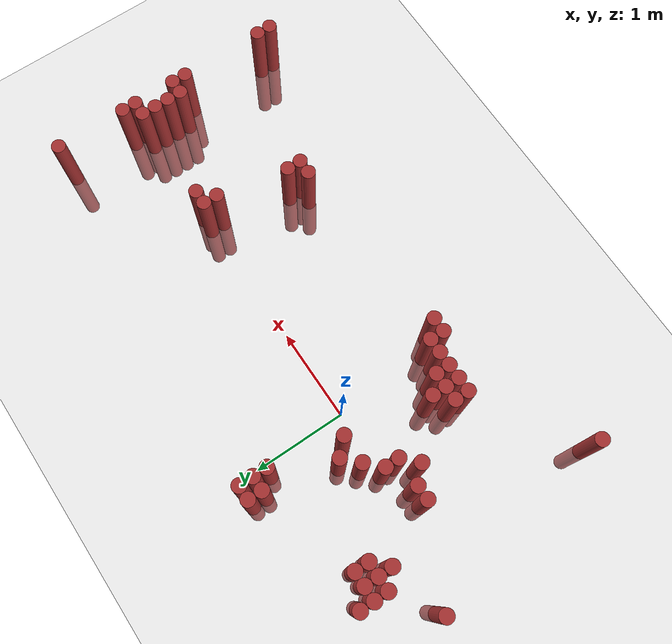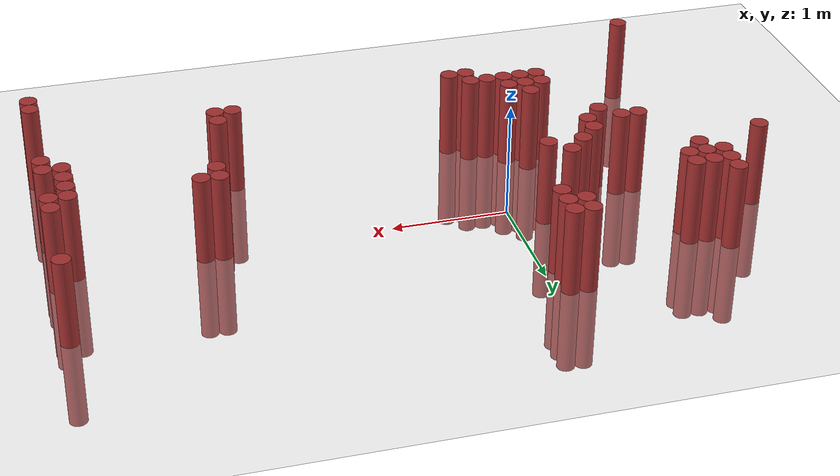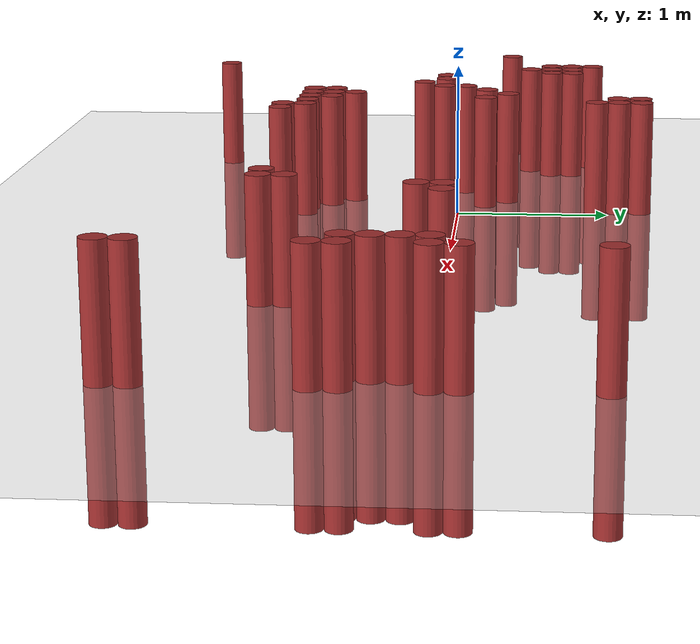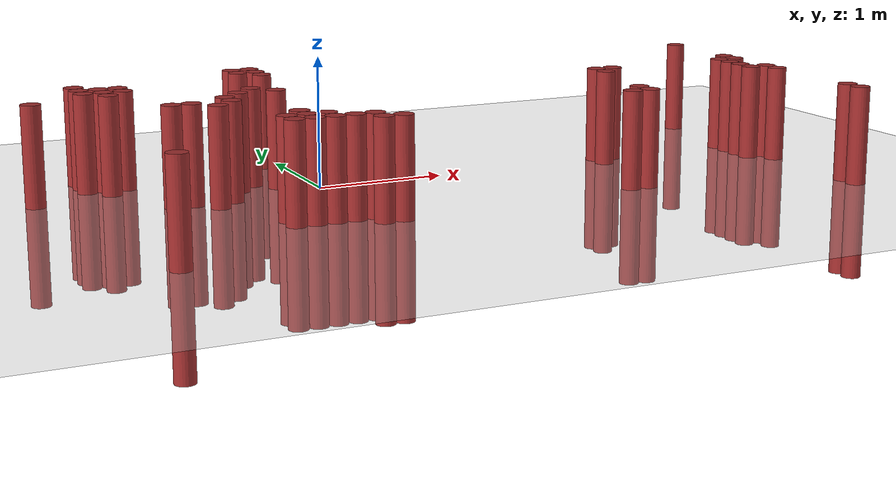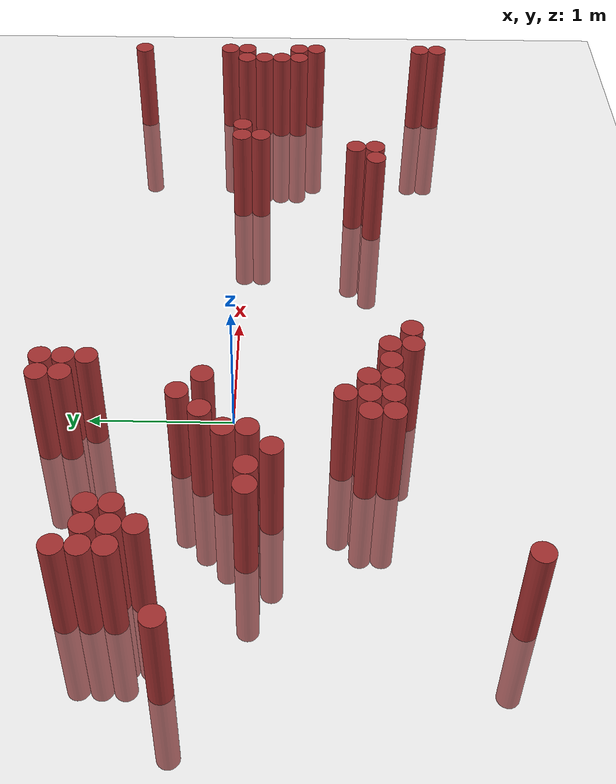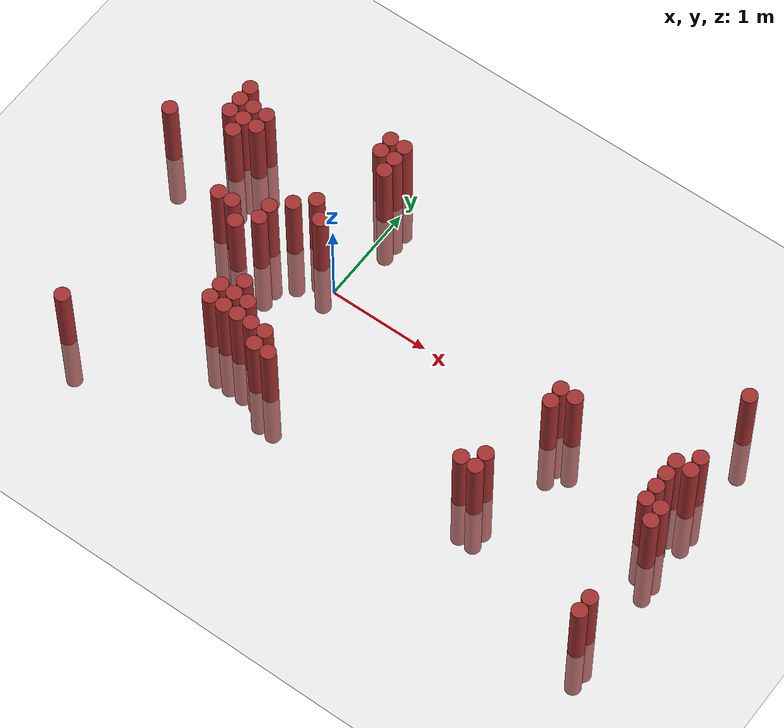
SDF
<sdf version="1.6">
 <world name="default">
  <model name="ground_plane">
   <static>1</static>
   <link name="link">
    <collision name="collision">
     <geometry><plane><normal>0 0 1</normal><size>100 100</size></plane></geometry>
     <surface><friction><ode><mu>100</mu><mu2>50</mu2></ode></friction></surface>
    </collision>
    <visual name="visual">
     <cast_shadows>0</cast_shadows>
     <geometry><plane><normal>0 0 1</normal><size>100 100</size></plane></geometry>
     <material>
      <script><uri>file://media/materials/scripts/gazebo.material</uri><name>Gazebo/Grey</name></script>
     </material>
    </visual>
   </link>
  </model>
  <model name="unit_cylinder_348">
   <static>1</static>
   <pose>-2.075000 0.325000 0.000000 0.000000 0.000000 0.000000</pose>
   <link name="link">
    <inertial>
     <mass>1</mass>
     <inertia><ixx>0.145833</ixx><ixy>0</ixy><ixz>0</ixz><iyy>0.145833</iyy><iyz>0</iyz><izz>0.125</izz></inertia>
    </inertial>
    <collision name="collision">
     <geometry><cylinder><radius>0.075000</radius><length>1.5</length></cylinder></geometry>
    </collision>
    <visual name="visual">
     <geometry><cylinder><radius>0.075000</radius><length>1.5</length></cylinder></geometry>
     <material>
      <ambient>0.648000 0.192000 0.192000 1</ambient>
      <diffuse>0.648000 0.192000 0.192000 1</diffuse>
     </material>
     <material>
      <script><name>Gazebo/Grey</name><uri>file://media/materials/scripts/gazebo.material</uri></script>
     </material>
    </visual>
   </link>
  </model>
  <model name="unit_cylinder_351">
   <static>1</static>
   <pose>-1.625000 -1.775000 0.000000 0.000000 0.000000 0.000000</pose>
   <link name="link">
    <inertial>
     <mass>1</mass>
     <inertia><ixx>0.145833</ixx><ixy>0</ixy><ixz>0</ixz><iyy>0.145833</iyy><iyz>0</iyz><izz>0.125</izz></inertia>
    </inertial>
    <collision name="collision">
     <geometry><cylinder><radius>0.075000</radius><length>1.5</length></cylinder></geometry>
    </collision>
    <visual name="visual">
     <geometry><cylinder><radius>0.075000</radius><length>1.5</length></cylinder></geometry>
     <material>
      <ambient>0.648000 0.192000 0.192000 1</ambient>
      <diffuse>0.648000 0.192000 0.192000 1</diffuse>
     </material>
     <material>
      <script><name>Gazebo/Grey</name><uri>file://media/materials/scripts/gazebo.material</uri></script>
     </material>
    </visual>
   </link>
  </model>
  <model name="unit_cylinder_352">
   <static>1</static>
   <pose>-1.625000 0.625000 0.000000 0.000000 0.000000 0.000000</pose>
   <link name="link">
    <inertial>
     <mass>1</mass>
     <inertia><ixx>0.145833</ixx><ixy>0</ixy><ixz>0</ixz><iyy>0.145833</iyy><iyz>0</iyz><izz>0.125</izz></inertia>
    </inertial>
    <collision name="collision">
     <geometry><cylinder><radius>0.075000</radius><length>1.5</length></cylinder></geometry>
    </collision>
    <visual name="visual">
     <geometry><cylinder><radius>0.075000</radius><length>1.5</length></cylinder></geometry>
     <material>
      <ambient>0.648000 0.192000 0.192000 1</ambient>
      <diffuse>0.648000 0.192000 0.192000 1</diffuse>
     </material>
     <material>
      <script><name>Gazebo/Grey</name><uri>file://media/materials/scripts/gazebo.material</uri></script>
     </material>
    </visual>
   </link>
  </model>
  <model name="unit_cylinder_353">
   <static>1</static>
   <pose>-1.625000 0.775000 0.000000 0.000000 0.000000 0.000000</pose>
   <link name="link">
    <inertial>
     <mass>1</mass>
     <inertia><ixx>0.145833</ixx><ixy>0</ixy><ixz>0</ixz><iyy>0.145833</iyy><iyz>0</iyz><izz>0.125</izz></inertia>
    </inertial>
    <collision name="collision">
     <geometry><cylinder><radius>0.075000</radius><length>1.5</length></cylinder></geometry>
    </collision>
    <visual name="visual">
     <geometry><cylinder><radius>0.075000</radius><length>1.5</length></cylinder></geometry>
     <material>
      <ambient>0.648000 0.192000 0.192000 1</ambient>
      <diffuse>0.648000 0.192000 0.192000 1</diffuse>
     </material>
     <material>
      <script><name>Gazebo/Grey</name><uri>file://media/materials/scripts/gazebo.material</uri></script>
     </material>
    </visual>
   </link>
  </model>
  <model name="unit_cylinder_354">
   <static>1</static>
   <pose>-1.625000 0.925000 0.000000 0.000000 0.000000 0.000000</pose>
   <link name="link">
    <inertial>
     <mass>1</mass>
     <inertia><ixx>0.145833</ixx><ixy>0</ixy><ixz>0</ixz><iyy>0.145833</iyy><iyz>0</iyz><izz>0.125</izz></inertia>
    </inertial>
    <collision name="collision">
     <geometry><cylinder><radius>0.075000</radius><length>1.5</length></cylinder></geometry>
    </collision>
    <visual name="visual">
     <geometry><cylinder><radius>0.075000</radius><length>1.5</length></cylinder></geometry>
     <material>
      <ambient>0.648000 0.192000 0.192000 1</ambient>
      <diffuse>0.648000 0.192000 0.192000 1</diffuse>
     </material>
     <material>
      <script><name>Gazebo/Grey</name><uri>file://media/materials/scripts/gazebo.material</uri></script>
     </material>
    </visual>
   </link>
  </model>
  <model name="unit_cylinder_355">
   <static>1</static>
   <pose>-1.475000 0.475000 0.000000 0.000000 0.000000 0.000000</pose>
   <link name="link">
    <inertial>
     <mass>1</mass>
     <inertia><ixx>0.145833</ixx><ixy>0</ixy><ixz>0</ixz><iyy>0.145833</iyy><iyz>0</iyz><izz>0.125</izz></inertia>
    </inertial>
    <collision name="collision">
     <geometry><cylinder><radius>0.075000</radius><length>1.5</length></cylinder></geometry>
    </collision>
    <visual name="visual">
     <geometry><cylinder><radius>0.075000</radius><length>1.5</length></cylinder></geometry>
     <material>
      <ambient>0.648000 0.192000 0.192000 1</ambient>
      <diffuse>0.648000 0.192000 0.192000 1</diffuse>
     </material>
     <material>
      <script><name>Gazebo/Grey</name><uri>file://media/materials/scripts/gazebo.material</uri></script>
     </material>
    </visual>
   </link>
  </model>
  <model name="unit_cylinder_356">
   <static>1</static>
   <pose>-1.475000 0.625000 0.000000 0.000000 0.000000 0.000000</pose>
   <link name="link">
    <inertial>
     <mass>1</mass>
     <inertia><ixx>0.145833</ixx><ixy>0</ixy><ixz>0</ixz><iyy>0.145833</iyy><iyz>0</iyz><izz>0.125</izz></inertia>
    </inertial>
    <collision name="collision">
     <geometry><cylinder><radius>0.075000</radius><length>1.5</length></cylinder></geometry>
    </collision>
    <visual name="visual">
     <geometry><cylinder><radius>0.075000</radius><length>1.5</length></cylinder></geometry>
     <material>
      <ambient>0.648000 0.192000 0.192000 1</ambient>
      <diffuse>0.648000 0.192000 0.192000 1</diffuse>
     </material>
     <material>
      <script><name>Gazebo/Grey</name><uri>file://media/materials/scripts/gazebo.material</uri></script>
     </material>
    </visual>
   </link>
  </model>
  <model name="unit_cylinder_357">
   <static>1</static>
   <pose>-1.475000 0.775000 0.000000 0.000000 0.000000 0.000000</pose>
   <link name="link">
    <inertial>
     <mass>1</mass>
     <inertia><ixx>0.145833</ixx><ixy>0</ixy><ixz>0</ixz><iyy>0.145833</iyy><iyz>0</iyz><izz>0.125</izz></inertia>
    </inertial>
    <collision name="collision">
     <geometry><cylinder><radius>0.075000</radius><length>1.5</length></cylinder></geometry>
    </collision>
    <visual name="visual">
     <geometry><cylinder><radius>0.075000</radius><length>1.5</length></cylinder></geometry>
     <material>
      <ambient>0.648000 0.192000 0.192000 1</ambient>
      <diffuse>0.648000 0.192000 0.192000 1</diffuse>
     </material>
     <material>
      <script><name>Gazebo/Grey</name><uri>file://media/materials/scripts/gazebo.material</uri></script>
     </material>
    </visual>
   </link>
  </model>
  <model name="unit_cylinder_358">
   <static>1</static>
   <pose>-1.325000 0.625000 0.000000 0.000000 0.000000 0.000000</pose>
   <link name="link">
    <inertial>
     <mass>1</mass>
     <inertia><ixx>0.145833</ixx><ixy>0</ixy><ixz>0</ixz><iyy>0.145833</iyy><iyz>0</iyz><izz>0.125</izz></inertia>
    </inertial>
    <collision name="collision">
     <geometry><cylinder><radius>0.075000</radius><length>1.5</length></cylinder></geometry>
    </collision>
    <visual name="visual">
     <geometry><cylinder><radius>0.075000</radius><length>1.5</length></cylinder></geometry>
     <material>
      <ambient>0.648000 0.192000 0.192000 1</ambient>
      <diffuse>0.648000 0.192000 0.192000 1</diffuse>
     </material>
     <material>
      <script><name>Gazebo/Grey</name><uri>file://media/materials/scripts/gazebo.material</uri></script>
     </material>
    </visual>
   </link>
  </model>
  <model name="unit_cylinder_359">
   <static>1</static>
   <pose>-1.325000 0.775000 0.000000 0.000000 0.000000 0.000000</pose>
   <link name="link">
    <inertial>
     <mass>1</mass>
     <inertia><ixx>0.145833</ixx><ixy>0</ixy><ixz>0</ixz><iyy>0.145833</iyy><iyz>0</iyz><izz>0.125</izz></inertia>
    </inertial>
    <collision name="collision">
     <geometry><cylinder><radius>0.075000</radius><length>1.5</length></cylinder></geometry>
    </collision>
    <visual name="visual">
     <geometry><cylinder><radius>0.075000</radius><length>1.5</length></cylinder></geometry>
     <material>
      <ambient>0.648000 0.192000 0.192000 1</ambient>
      <diffuse>0.648000 0.192000 0.192000 1</diffuse>
     </material>
     <material>
      <script><name>Gazebo/Grey</name><uri>file://media/materials/scripts/gazebo.material</uri></script>
     </material>
    </visual>
   </link>
  </model>
  <model name="unit_cylinder_362">
   <static>1</static>
   <pose>-1.175000 -0.125000 0.000000 0.000000 0.000000 0.000000</pose>
   <link name="link">
    <inertial>
     <mass>1</mass>
     <inertia><ixx>0.145833</ixx><ixy>0</ixy><ixz>0</ixz><iyy>0.145833</iyy><iyz>0</iyz><izz>0.125</izz></inertia>
    </inertial>
    <collision name="collision">
     <geometry><cylinder><radius>0.075000</radius><length>1.5</length></cylinder></geometry>
    </collision>
    <visual name="visual">
     <geometry><cylinder><radius>0.075000</radius><length>1.5</length></cylinder></geometry>
     <material>
      <ambient>0.648000 0.192000 0.192000 1</ambient>
      <diffuse>0.648000 0.192000 0.192000 1</diffuse>
     </material>
     <material>
      <script><name>Gazebo/Grey</name><uri>file://media/materials/scripts/gazebo.material</uri></script>
     </material>
    </visual>
   </link>
  </model>
  <model name="unit_cylinder_366">
   <static>1</static>
   <pose>-1.025000 -0.125000 0.000000 0.000000 0.000000 0.000000</pose>
   <link name="link">
    <inertial>
     <mass>1</mass>
     <inertia><ixx>0.145833</ixx><ixy>0</ixy><ixz>0</ixz><iyy>0.145833</iyy><iyz>0</iyz><izz>0.125</izz></inertia>
    </inertial>
    <collision name="collision">
     <geometry><cylinder><radius>0.075000</radius><length>1.5</length></cylinder></geometry>
    </collision>
    <visual name="visual">
     <geometry><cylinder><radius>0.075000</radius><length>1.5</length></cylinder></geometry>
     <material>
      <ambient>0.648000 0.192000 0.192000 1</ambient>
      <diffuse>0.648000 0.192000 0.192000 1</diffuse>
     </material>
     <material>
      <script><name>Gazebo/Grey</name><uri>file://media/materials/scripts/gazebo.material</uri></script>
     </material>
    </visual>
   </link>
  </model>
  <model name="unit_cylinder_369">
   <static>1</static>
   <pose>-0.875000 -0.275000 0.000000 0.000000 0.000000 0.000000</pose>
   <link name="link">
    <inertial>
     <mass>1</mass>
     <inertia><ixx>0.145833</ixx><ixy>0</ixy><ixz>0</ixz><iyy>0.145833</iyy><iyz>0</iyz><izz>0.125</izz></inertia>
    </inertial>
    <collision name="collision">
     <geometry><cylinder><radius>0.075000</radius><length>1.5</length></cylinder></geometry>
    </collision>
    <visual name="visual">
     <geometry><cylinder><radius>0.075000</radius><length>1.5</length></cylinder></geometry>
     <material>
      <ambient>0.648000 0.192000 0.192000 1</ambient>
      <diffuse>0.648000 0.192000 0.192000 1</diffuse>
     </material>
     <material>
      <script><name>Gazebo/Grey</name><uri>file://media/materials/scripts/gazebo.material</uri></script>
     </material>
    </visual>
   </link>
  </model>
  <model name="unit_cylinder_372">
   <static>1</static>
   <pose>-0.725000 -0.125000 0.000000 0.000000 0.000000 0.000000</pose>
   <link name="link">
    <inertial>
     <mass>1</mass>
     <inertia><ixx>0.145833</ixx><ixy>0</ixy><ixz>0</ixz><iyy>0.145833</iyy><iyz>0</iyz><izz>0.125</izz></inertia>
    </inertial>
    <collision name="collision">
     <geometry><cylinder><radius>0.075000</radius><length>1.5</length></cylinder></geometry>
    </collision>
    <visual name="visual">
     <geometry><cylinder><radius>0.075000</radius><length>1.5</length></cylinder></geometry>
     <material>
      <ambient>0.648000 0.192000 0.192000 1</ambient>
      <diffuse>0.648000 0.192000 0.192000 1</diffuse>
     </material>
     <material>
      <script><name>Gazebo/Grey</name><uri>file://media/materials/scripts/gazebo.material</uri></script>
     </material>
    </visual>
   </link>
  </model>
  <model name="unit_cylinder_373">
   <static>1</static>
   <pose>-0.725000 0.025000 0.000000 0.000000 0.000000 0.000000</pose>
   <link name="link">
    <inertial>
     <mass>1</mass>
     <inertia><ixx>0.145833</ixx><ixy>0</ixy><ixz>0</ixz><iyy>0.145833</iyy><iyz>0</iyz><izz>0.125</izz></inertia>
    </inertial>
    <collision name="collision">
     <geometry><cylinder><radius>0.075000</radius><length>1.5</length></cylinder></geometry>
    </collision>
    <visual name="visual">
     <geometry><cylinder><radius>0.075000</radius><length>1.5</length></cylinder></geometry>
     <material>
      <ambient>0.648000 0.192000 0.192000 1</ambient>
      <diffuse>0.648000 0.192000 0.192000 1</diffuse>
     </material>
     <material>
      <script><name>Gazebo/Grey</name><uri>file://media/materials/scripts/gazebo.material</uri></script>
     </material>
    </visual>
   </link>
  </model>
  <model name="unit_cylinder_376">
   <static>1</static>
   <pose>-0.575000 -1.025000 0.000000 0.000000 0.000000 0.000000</pose>
   <link name="link">
    <inertial>
     <mass>1</mass>
     <inertia><ixx>0.145833</ixx><ixy>0</ixy><ixz>0</ixz><iyy>0.145833</iyy><iyz>0</iyz><izz>0.125</izz></inertia>
    </inertial>
    <collision name="collision">
     <geometry><cylinder><radius>0.075000</radius><length>1.5</length></cylinder></geometry>
    </collision>
    <visual name="visual">
     <geometry><cylinder><radius>0.075000</radius><length>1.5</length></cylinder></geometry>
     <material>
      <ambient>0.648000 0.192000 0.192000 1</ambient>
      <diffuse>0.648000 0.192000 0.192000 1</diffuse>
     </material>
     <material>
      <script><name>Gazebo/Grey</name><uri>file://media/materials/scripts/gazebo.material</uri></script>
     </material>
    </visual>
   </link>
  </model>
  <model name="unit_cylinder_377">
   <static>1</static>
   <pose>-0.575000 -0.875000 0.000000 0.000000 0.000000 0.000000</pose>
   <link name="link">
    <inertial>
     <mass>1</mass>
     <inertia><ixx>0.145833</ixx><ixy>0</ixy><ixz>0</ixz><iyy>0.145833</iyy><iyz>0</iyz><izz>0.125</izz></inertia>
    </inertial>
    <collision name="collision">
     <geometry><cylinder><radius>0.075000</radius><length>1.5</length></cylinder></geometry>
    </collision>
    <visual name="visual">
     <geometry><cylinder><radius>0.075000</radius><length>1.5</length></cylinder></geometry>
     <material>
      <ambient>0.648000 0.192000 0.192000 1</ambient>
      <diffuse>0.648000 0.192000 0.192000 1</diffuse>
     </material>
     <material>
      <script><name>Gazebo/Grey</name><uri>file://media/materials/scripts/gazebo.material</uri></script>
     </material>
    </visual>
   </link>
  </model>
  <model name="unit_cylinder_378">
   <static>1</static>
   <pose>-0.575000 0.175000 0.000000 0.000000 0.000000 0.000000</pose>
   <link name="link">
    <inertial>
     <mass>1</mass>
     <inertia><ixx>0.145833</ixx><ixy>0</ixy><ixz>0</ixz><iyy>0.145833</iyy><iyz>0</iyz><izz>0.125</izz></inertia>
    </inertial>
    <collision name="collision">
     <geometry><cylinder><radius>0.075000</radius><length>1.5</length></cylinder></geometry>
    </collision>
    <visual name="visual">
     <geometry><cylinder><radius>0.075000</radius><length>1.5</length></cylinder></geometry>
     <material>
      <ambient>0.648000 0.192000 0.192000 1</ambient>
      <diffuse>0.648000 0.192000 0.192000 1</diffuse>
     </material>
     <material>
      <script><name>Gazebo/Grey</name><uri>file://media/materials/scripts/gazebo.material</uri></script>
     </material>
    </visual>
   </link>
  </model>
  <model name="unit_cylinder_380">
   <static>1</static>
   <pose>-0.425000 -1.025000 0.000000 0.000000 0.000000 0.000000</pose>
   <link name="link">
    <inertial>
     <mass>1</mass>
     <inertia><ixx>0.145833</ixx><ixy>0</ixy><ixz>0</ixz><iyy>0.145833</iyy><iyz>0</iyz><izz>0.125</izz></inertia>
    </inertial>
    <collision name="collision">
     <geometry><cylinder><radius>0.075000</radius><length>1.5</length></cylinder></geometry>
    </collision>
    <visual name="visual">
     <geometry><cylinder><radius>0.075000</radius><length>1.5</length></cylinder></geometry>
     <material>
      <ambient>0.648000 0.192000 0.192000 1</ambient>
      <diffuse>0.648000 0.192000 0.192000 1</diffuse>
     </material>
     <material>
      <script><name>Gazebo/Grey</name><uri>file://media/materials/scripts/gazebo.material</uri></script>
     </material>
    </visual>
   </link>
  </model>
  <model name="unit_cylinder_381">
   <static>1</static>
   <pose>-0.425000 -0.875000 0.000000 0.000000 0.000000 0.000000</pose>
   <link name="link">
    <inertial>
     <mass>1</mass>
     <inertia><ixx>0.145833</ixx><ixy>0</ixy><ixz>0</ixz><iyy>0.145833</iyy><iyz>0</iyz><izz>0.125</izz></inertia>
    </inertial>
    <collision name="collision">
     <geometry><cylinder><radius>0.075000</radius><length>1.5</length></cylinder></geometry>
    </collision>
    <visual name="visual">
     <geometry><cylinder><radius>0.075000</radius><length>1.5</length></cylinder></geometry>
     <material>
      <ambient>0.648000 0.192000 0.192000 1</ambient>
      <diffuse>0.648000 0.192000 0.192000 1</diffuse>
     </material>
     <material>
      <script><name>Gazebo/Grey</name><uri>file://media/materials/scripts/gazebo.material</uri></script>
     </material>
    </visual>
   </link>
  </model>
  <model name="unit_cylinder_382">
   <static>1</static>
   <pose>-0.425000 -0.725000 0.000000 0.000000 0.000000 0.000000</pose>
   <link name="link">
    <inertial>
     <mass>1</mass>
     <inertia><ixx>0.145833</ixx><ixy>0</ixy><ixz>0</ixz><iyy>0.145833</iyy><iyz>0</iyz><izz>0.125</izz></inertia>
    </inertial>
    <collision name="collision">
     <geometry><cylinder><radius>0.075000</radius><length>1.5</length></cylinder></geometry>
    </collision>
    <visual name="visual">
     <geometry><cylinder><radius>0.075000</radius><length>1.5</length></cylinder></geometry>
     <material>
      <ambient>0.648000 0.192000 0.192000 1</ambient>
      <diffuse>0.648000 0.192000 0.192000 1</diffuse>
     </material>
     <material>
      <script><name>Gazebo/Grey</name><uri>file://media/materials/scripts/gazebo.material</uri></script>
     </material>
    </visual>
   </link>
  </model>
  <model name="unit_cylinder_383">
   <static>1</static>
   <pose>-0.425000 0.325000 0.000000 0.000000 0.000000 0.000000</pose>
   <link name="link">
    <inertial>
     <mass>1</mass>
     <inertia><ixx>0.145833</ixx><ixy>0</ixy><ixz>0</ixz><iyy>0.145833</iyy><iyz>0</iyz><izz>0.125</izz></inertia>
    </inertial>
    <collision name="collision">
     <geometry><cylinder><radius>0.075000</radius><length>1.5</length></cylinder></geometry>
    </collision>
    <visual name="visual">
     <geometry><cylinder><radius>0.075000</radius><length>1.5</length></cylinder></geometry>
     <material>
      <ambient>0.648000 0.192000 0.192000 1</ambient>
      <diffuse>0.648000 0.192000 0.192000 1</diffuse>
     </material>
     <material>
      <script><name>Gazebo/Grey</name><uri>file://media/materials/scripts/gazebo.material</uri></script>
     </material>
    </visual>
   </link>
  </model>
  <model name="unit_cylinder_384">
   <static>1</static>
   <pose>-0.275000 -1.025000 0.000000 0.000000 0.000000 0.000000</pose>
   <link name="link">
    <inertial>
     <mass>1</mass>
     <inertia><ixx>0.145833</ixx><ixy>0</ixy><ixz>0</ixz><iyy>0.145833</iyy><iyz>0</iyz><izz>0.125</izz></inertia>
    </inertial>
    <collision name="collision">
     <geometry><cylinder><radius>0.075000</radius><length>1.5</length></cylinder></geometry>
    </collision>
    <visual name="visual">
     <geometry><cylinder><radius>0.075000</radius><length>1.5</length></cylinder></geometry>
     <material>
      <ambient>0.648000 0.192000 0.192000 1</ambient>
      <diffuse>0.648000 0.192000 0.192000 1</diffuse>
     </material>
     <material>
      <script><name>Gazebo/Grey</name><uri>file://media/materials/scripts/gazebo.material</uri></script>
     </material>
    </visual>
   </link>
  </model>
  <model name="unit_cylinder_385">
   <static>1</static>
   <pose>-0.275000 -0.875000 0.000000 0.000000 0.000000 0.000000</pose>
   <link name="link">
    <inertial>
     <mass>1</mass>
     <inertia><ixx>0.145833</ixx><ixy>0</ixy><ixz>0</ixz><iyy>0.145833</iyy><iyz>0</iyz><izz>0.125</izz></inertia>
    </inertial>
    <collision name="collision">
     <geometry><cylinder><radius>0.075000</radius><length>1.5</length></cylinder></geometry>
    </collision>
    <visual name="visual">
     <geometry><cylinder><radius>0.075000</radius><length>1.5</length></cylinder></geometry>
     <material>
      <ambient>0.648000 0.192000 0.192000 1</ambient>
      <diffuse>0.648000 0.192000 0.192000 1</diffuse>
     </material>
     <material>
      <script><name>Gazebo/Grey</name><uri>file://media/materials/scripts/gazebo.material</uri></script>
     </material>
    </visual>
   </link>
  </model>
  <model name="unit_cylinder_386">
   <static>1</static>
   <pose>-0.275000 0.175000 0.000000 0.000000 0.000000 0.000000</pose>
   <link name="link">
    <inertial>
     <mass>1</mass>
     <inertia><ixx>0.145833</ixx><ixy>0</ixy><ixz>0</ixz><iyy>0.145833</iyy><iyz>0</iyz><izz>0.125</izz></inertia>
    </inertial>
    <collision name="collision">
     <geometry><cylinder><radius>0.075000</radius><length>1.5</length></cylinder></geometry>
    </collision>
    <visual name="visual">
     <geometry><cylinder><radius>0.075000</radius><length>1.5</length></cylinder></geometry>
     <material>
      <ambient>0.648000 0.192000 0.192000 1</ambient>
      <diffuse>0.648000 0.192000 0.192000 1</diffuse>
     </material>
     <material>
      <script><name>Gazebo/Grey</name><uri>file://media/materials/scripts/gazebo.material</uri></script>
     </material>
    </visual>
   </link>
  </model>
  <model name="unit_cylinder_387">
   <static>1</static>
   <pose>-0.275000 1.075000 0.000000 0.000000 0.000000 0.000000</pose>
   <link name="link">
    <inertial>
     <mass>1</mass>
     <inertia><ixx>0.145833</ixx><ixy>0</ixy><ixz>0</ixz><iyy>0.145833</iyy><iyz>0</iyz><izz>0.125</izz></inertia>
    </inertial>
    <collision name="collision">
     <geometry><cylinder><radius>0.075000</radius><length>1.5</length></cylinder></geometry>
    </collision>
    <visual name="visual">
     <geometry><cylinder><radius>0.075000</radius><length>1.5</length></cylinder></geometry>
     <material>
      <ambient>0.648000 0.192000 0.192000 1</ambient>
      <diffuse>0.648000 0.192000 0.192000 1</diffuse>
     </material>
     <material>
      <script><name>Gazebo/Grey</name><uri>file://media/materials/scripts/gazebo.material</uri></script>
     </material>
    </visual>
   </link>
  </model>
  <model name="unit_cylinder_388">
   <static>1</static>
   <pose>-0.275000 1.225000 0.000000 0.000000 0.000000 0.000000</pose>
   <link name="link">
    <inertial>
     <mass>1</mass>
     <inertia><ixx>0.145833</ixx><ixy>0</ixy><ixz>0</ixz><iyy>0.145833</iyy><iyz>0</iyz><izz>0.125</izz></inertia>
    </inertial>
    <collision name="collision">
     <geometry><cylinder><radius>0.075000</radius><length>1.5</length></cylinder></geometry>
    </collision>
    <visual name="visual">
     <geometry><cylinder><radius>0.075000</radius><length>1.5</length></cylinder></geometry>
     <material>
      <ambient>0.648000 0.192000 0.192000 1</ambient>
      <diffuse>0.648000 0.192000 0.192000 1</diffuse>
     </material>
     <material>
      <script><name>Gazebo/Grey</name><uri>file://media/materials/scripts/gazebo.material</uri></script>
     </material>
    </visual>
   </link>
  </model>
  <model name="unit_cylinder_390">
   <static>1</static>
   <pose>-0.125000 -1.025000 0.000000 0.000000 0.000000 0.000000</pose>
   <link name="link">
    <inertial>
     <mass>1</mass>
     <inertia><ixx>0.145833</ixx><ixy>0</ixy><ixz>0</ixz><iyy>0.145833</iyy><iyz>0</iyz><izz>0.125</izz></inertia>
    </inertial>
    <collision name="collision">
     <geometry><cylinder><radius>0.075000</radius><length>1.5</length></cylinder></geometry>
    </collision>
    <visual name="visual">
     <geometry><cylinder><radius>0.075000</radius><length>1.5</length></cylinder></geometry>
     <material>
      <ambient>0.648000 0.192000 0.192000 1</ambient>
      <diffuse>0.648000 0.192000 0.192000 1</diffuse>
     </material>
     <material>
      <script><name>Gazebo/Grey</name><uri>file://media/materials/scripts/gazebo.material</uri></script>
     </material>
    </visual>
   </link>
  </model>
  <model name="unit_cylinder_391">
   <static>1</static>
   <pose>-0.125000 0.925000 0.000000 0.000000 0.000000 0.000000</pose>
   <link name="link">
    <inertial>
     <mass>1</mass>
     <inertia><ixx>0.145833</ixx><ixy>0</ixy><ixz>0</ixz><iyy>0.145833</iyy><iyz>0</iyz><izz>0.125</izz></inertia>
    </inertial>
    <collision name="collision">
     <geometry><cylinder><radius>0.075000</radius><length>1.5</length></cylinder></geometry>
    </collision>
    <visual name="visual">
     <geometry><cylinder><radius>0.075000</radius><length>1.5</length></cylinder></geometry>
     <material>
      <ambient>0.648000 0.192000 0.192000 1</ambient>
      <diffuse>0.648000 0.192000 0.192000 1</diffuse>
     </material>
     <material>
      <script><name>Gazebo/Grey</name><uri>file://media/materials/scripts/gazebo.material</uri></script>
     </material>
    </visual>
   </link>
  </model>
  <model name="unit_cylinder_392">
   <static>1</static>
   <pose>-0.125000 1.075000 0.000000 0.000000 0.000000 0.000000</pose>
   <link name="link">
    <inertial>
     <mass>1</mass>
     <inertia><ixx>0.145833</ixx><ixy>0</ixy><ixz>0</ixz><iyy>0.145833</iyy><iyz>0</iyz><izz>0.125</izz></inertia>
    </inertial>
    <collision name="collision">
     <geometry><cylinder><radius>0.075000</radius><length>1.5</length></cylinder></geometry>
    </collision>
    <visual name="visual">
     <geometry><cylinder><radius>0.075000</radius><length>1.5</length></cylinder></geometry>
     <material>
      <ambient>0.648000 0.192000 0.192000 1</ambient>
      <diffuse>0.648000 0.192000 0.192000 1</diffuse>
     </material>
     <material>
      <script><name>Gazebo/Grey</name><uri>file://media/materials/scripts/gazebo.material</uri></script>
     </material>
    </visual>
   </link>
  </model>
  <model name="unit_cylinder_393">
   <static>1</static>
   <pose>-0.125000 1.225000 0.000000 0.000000 0.000000 0.000000</pose>
   <link name="link">
    <inertial>
     <mass>1</mass>
     <inertia><ixx>0.145833</ixx><ixy>0</ixy><ixz>0</ixz><iyy>0.145833</iyy><iyz>0</iyz><izz>0.125</izz></inertia>
    </inertial>
    <collision name="collision">
     <geometry><cylinder><radius>0.075000</radius><length>1.5</length></cylinder></geometry>
    </collision>
    <visual name="visual">
     <geometry><cylinder><radius>0.075000</radius><length>1.5</length></cylinder></geometry>
     <material>
      <ambient>0.648000 0.192000 0.192000 1</ambient>
      <diffuse>0.648000 0.192000 0.192000 1</diffuse>
     </material>
     <material>
      <script><name>Gazebo/Grey</name><uri>file://media/materials/scripts/gazebo.material</uri></script>
     </material>
    </visual>
   </link>
  </model>
  <model name="unit_cylinder_396">
   <static>1</static>
   <pose>0.025000 -1.175000 0.000000 0.000000 0.000000 0.000000</pose>
   <link name="link">
    <inertial>
     <mass>1</mass>
     <inertia><ixx>0.145833</ixx><ixy>0</ixy><ixz>0</ixz><iyy>0.145833</iyy><iyz>0</iyz><izz>0.125</izz></inertia>
    </inertial>
    <collision name="collision">
     <geometry><cylinder><radius>0.075000</radius><length>1.5</length></cylinder></geometry>
    </collision>
    <visual name="visual">
     <geometry><cylinder><radius>0.075000</radius><length>1.5</length></cylinder></geometry>
     <material>
      <ambient>0.648000 0.192000 0.192000 1</ambient>
      <diffuse>0.648000 0.192000 0.192000 1</diffuse>
     </material>
     <material>
      <script><name>Gazebo/Grey</name><uri>file://media/materials/scripts/gazebo.material</uri></script>
     </material>
    </visual>
   </link>
  </model>
  <model name="unit_cylinder_397">
   <static>1</static>
   <pose>0.025000 -1.025000 0.000000 0.000000 0.000000 0.000000</pose>
   <link name="link">
    <inertial>
     <mass>1</mass>
     <inertia><ixx>0.145833</ixx><ixy>0</ixy><ixz>0</ixz><iyy>0.145833</iyy><iyz>0</iyz><izz>0.125</izz></inertia>
    </inertial>
    <collision name="collision">
     <geometry><cylinder><radius>0.075000</radius><length>1.5</length></cylinder></geometry>
    </collision>
    <visual name="visual">
     <geometry><cylinder><radius>0.075000</radius><length>1.5</length></cylinder></geometry>
     <material>
      <ambient>0.648000 0.192000 0.192000 1</ambient>
      <diffuse>0.648000 0.192000 0.192000 1</diffuse>
     </material>
     <material>
      <script><name>Gazebo/Grey</name><uri>file://media/materials/scripts/gazebo.material</uri></script>
     </material>
    </visual>
   </link>
  </model>
  <model name="unit_cylinder_398">
   <static>1</static>
   <pose>0.175000 -1.175000 0.000000 0.000000 0.000000 0.000000</pose>
   <link name="link">
    <inertial>
     <mass>1</mass>
     <inertia><ixx>0.145833</ixx><ixy>0</ixy><ixz>0</ixz><iyy>0.145833</iyy><iyz>0</iyz><izz>0.125</izz></inertia>
    </inertial>
    <collision name="collision">
     <geometry><cylinder><radius>0.075000</radius><length>1.5</length></cylinder></geometry>
    </collision>
    <visual name="visual">
     <geometry><cylinder><radius>0.075000</radius><length>1.5</length></cylinder></geometry>
     <material>
      <ambient>0.648000 0.192000 0.192000 1</ambient>
      <diffuse>0.648000 0.192000 0.192000 1</diffuse>
     </material>
     <material>
      <script><name>Gazebo/Grey</name><uri>file://media/materials/scripts/gazebo.material</uri></script>
     </material>
    </visual>
   </link>
  </model>
  <model name="unit_cylinder_409">
   <static>1</static>
   <pose>2.125000 -1.025000 0.000000 0.000000 0.000000 0.000000</pose>
   <link name="link">
    <inertial>
     <mass>1</mass>
     <inertia><ixx>0.145833</ixx><ixy>0</ixy><ixz>0</ixz><iyy>0.145833</iyy><iyz>0</iyz><izz>0.125</izz></inertia>
    </inertial>
    <collision name="collision">
     <geometry><cylinder><radius>0.075000</radius><length>1.5</length></cylinder></geometry>
    </collision>
    <visual name="visual">
     <geometry><cylinder><radius>0.075000</radius><length>1.5</length></cylinder></geometry>
     <material>
      <ambient>0.648000 0.192000 0.192000 1</ambient>
      <diffuse>0.648000 0.192000 0.192000 1</diffuse>
     </material>
     <material>
      <script><name>Gazebo/Grey</name><uri>file://media/materials/scripts/gazebo.material</uri></script>
     </material>
    </visual>
   </link>
  </model>
  <model name="unit_cylinder_410">
   <static>1</static>
   <pose>2.275000 -1.025000 0.000000 0.000000 0.000000 0.000000</pose>
   <link name="link">
    <inertial>
     <mass>1</mass>
     <inertia><ixx>0.145833</ixx><ixy>0</ixy><ixz>0</ixz><iyy>0.145833</iyy><iyz>0</iyz><izz>0.125</izz></inertia>
    </inertial>
    <collision name="collision">
     <geometry><cylinder><radius>0.075000</radius><length>1.5</length></cylinder></geometry>
    </collision>
    <visual name="visual">
     <geometry><cylinder><radius>0.075000</radius><length>1.5</length></cylinder></geometry>
     <material>
      <ambient>0.648000 0.192000 0.192000 1</ambient>
      <diffuse>0.648000 0.192000 0.192000 1</diffuse>
     </material>
     <material>
      <script><name>Gazebo/Grey</name><uri>file://media/materials/scripts/gazebo.material</uri></script>
     </material>
    </visual>
   </link>
  </model>
  <model name="unit_cylinder_411">
   <static>1</static>
   <pose>2.275000 -0.875000 0.000000 0.000000 0.000000 0.000000</pose>
   <link name="link">
    <inertial>
     <mass>1</mass>
     <inertia><ixx>0.145833</ixx><ixy>0</ixy><ixz>0</ixz><iyy>0.145833</iyy><iyz>0</iyz><izz>0.125</izz></inertia>
    </inertial>
    <collision name="collision">
     <geometry><cylinder><radius>0.075000</radius><length>1.5</length></cylinder></geometry>
    </collision>
    <visual name="visual">
     <geometry><cylinder><radius>0.075000</radius><length>1.5</length></cylinder></geometry>
     <material>
      <ambient>0.648000 0.192000 0.192000 1</ambient>
      <diffuse>0.648000 0.192000 0.192000 1</diffuse>
     </material>
     <material>
      <script><name>Gazebo/Grey</name><uri>file://media/materials/scripts/gazebo.material</uri></script>
     </material>
    </visual>
   </link>
  </model>
  <model name="unit_cylinder_412">
   <static>1</static>
   <pose>2.425000 -0.125000 0.000000 0.000000 0.000000 0.000000</pose>
   <link name="link">
    <inertial>
     <mass>1</mass>
     <inertia><ixx>0.145833</ixx><ixy>0</ixy><ixz>0</ixz><iyy>0.145833</iyy><iyz>0</iyz><izz>0.125</izz></inertia>
    </inertial>
    <collision name="collision">
     <geometry><cylinder><radius>0.075000</radius><length>1.5</length></cylinder></geometry>
    </collision>
    <visual name="visual">
     <geometry><cylinder><radius>0.075000</radius><length>1.5</length></cylinder></geometry>
     <material>
      <ambient>0.648000 0.192000 0.192000 1</ambient>
      <diffuse>0.648000 0.192000 0.192000 1</diffuse>
     </material>
     <material>
      <script><name>Gazebo/Grey</name><uri>file://media/materials/scripts/gazebo.material</uri></script>
     </material>
    </visual>
   </link>
  </model>
  <model name="unit_cylinder_413">
   <static>1</static>
   <pose>2.425000 0.025000 0.000000 0.000000 0.000000 0.000000</pose>
   <link name="link">
    <inertial>
     <mass>1</mass>
     <inertia><ixx>0.145833</ixx><ixy>0</ixy><ixz>0</ixz><iyy>0.145833</iyy><iyz>0</iyz><izz>0.125</izz></inertia>
    </inertial>
    <collision name="collision">
     <geometry><cylinder><radius>0.075000</radius><length>1.5</length></cylinder></geometry>
    </collision>
    <visual name="visual">
     <geometry><cylinder><radius>0.075000</radius><length>1.5</length></cylinder></geometry>
     <material>
      <ambient>0.648000 0.192000 0.192000 1</ambient>
      <diffuse>0.648000 0.192000 0.192000 1</diffuse>
     </material>
     <material>
      <script><name>Gazebo/Grey</name><uri>file://media/materials/scripts/gazebo.material</uri></script>
     </material>
    </visual>
   </link>
  </model>
  <model name="unit_cylinder_417">
   <static>1</static>
   <pose>2.575000 0.025000 0.000000 0.000000 0.000000 0.000000</pose>
   <link name="link">
    <inertial>
     <mass>1</mass>
     <inertia><ixx>0.145833</ixx><ixy>0</ixy><ixz>0</ixz><iyy>0.145833</iyy><iyz>0</iyz><izz>0.125</izz></inertia>
    </inertial>
    <collision name="collision">
     <geometry><cylinder><radius>0.075000</radius><length>1.5</length></cylinder></geometry>
    </collision>
    <visual name="visual">
     <geometry><cylinder><radius>0.075000</radius><length>1.5</length></cylinder></geometry>
     <material>
      <ambient>0.648000 0.192000 0.192000 1</ambient>
      <diffuse>0.648000 0.192000 0.192000 1</diffuse>
     </material>
     <material>
      <script><name>Gazebo/Grey</name><uri>file://media/materials/scripts/gazebo.material</uri></script>
     </material>
    </visual>
   </link>
  </model>
  <model name="unit_cylinder_431">
   <static>1</static>
   <pose>3.625000 -0.425000 0.000000 0.000000 0.000000 0.000000</pose>
   <link name="link">
    <inertial>
     <mass>1</mass>
     <inertia><ixx>0.145833</ixx><ixy>0</ixy><ixz>0</ixz><iyy>0.145833</iyy><iyz>0</iyz><izz>0.125</izz></inertia>
    </inertial>
    <collision name="collision">
     <geometry><cylinder><radius>0.075000</radius><length>1.5</length></cylinder></geometry>
    </collision>
    <visual name="visual">
     <geometry><cylinder><radius>0.075000</radius><length>1.5</length></cylinder></geometry>
     <material>
      <ambient>0.648000 0.192000 0.192000 1</ambient>
      <diffuse>0.648000 0.192000 0.192000 1</diffuse>
     </material>
     <material>
      <script><name>Gazebo/Grey</name><uri>file://media/materials/scripts/gazebo.material</uri></script>
     </material>
    </visual>
   </link>
  </model>
  <model name="unit_cylinder_432">
   <static>1</static>
   <pose>3.625000 -0.275000 0.000000 0.000000 0.000000 0.000000</pose>
   <link name="link">
    <inertial>
     <mass>1</mass>
     <inertia><ixx>0.145833</ixx><ixy>0</ixy><ixz>0</ixz><iyy>0.145833</iyy><iyz>0</iyz><izz>0.125</izz></inertia>
    </inertial>
    <collision name="collision">
     <geometry><cylinder><radius>0.075000</radius><length>1.5</length></cylinder></geometry>
    </collision>
    <visual name="visual">
     <geometry><cylinder><radius>0.075000</radius><length>1.5</length></cylinder></geometry>
     <material>
      <ambient>0.648000 0.192000 0.192000 1</ambient>
      <diffuse>0.648000 0.192000 0.192000 1</diffuse>
     </material>
     <material>
      <script><name>Gazebo/Grey</name><uri>file://media/materials/scripts/gazebo.material</uri></script>
     </material>
    </visual>
   </link>
  </model>
  <model name="unit_cylinder_433">
   <static>1</static>
   <pose>3.625000 -0.125000 0.000000 0.000000 0.000000 0.000000</pose>
   <link name="link">
    <inertial>
     <mass>1</mass>
     <inertia><ixx>0.145833</ixx><ixy>0</ixy><ixz>0</ixz><iyy>0.145833</iyy><iyz>0</iyz><izz>0.125</izz></inertia>
    </inertial>
    <collision name="collision">
     <geometry><cylinder><radius>0.075000</radius><length>1.5</length></cylinder></geometry>
    </collision>
    <visual name="visual">
     <geometry><cylinder><radius>0.075000</radius><length>1.5</length></cylinder></geometry>
     <material>
      <ambient>0.648000 0.192000 0.192000 1</ambient>
      <diffuse>0.648000 0.192000 0.192000 1</diffuse>
     </material>
     <material>
      <script><name>Gazebo/Grey</name><uri>file://media/materials/scripts/gazebo.material</uri></script>
     </material>
    </visual>
   </link>
  </model>
  <model name="unit_cylinder_434">
   <static>1</static>
   <pose>3.625000 0.025000 0.000000 0.000000 0.000000 0.000000</pose>
   <link name="link">
    <inertial>
     <mass>1</mass>
     <inertia><ixx>0.145833</ixx><ixy>0</ixy><ixz>0</ixz><iyy>0.145833</iyy><iyz>0</iyz><izz>0.125</izz></inertia>
    </inertial>
    <collision name="collision">
     <geometry><cylinder><radius>0.075000</radius><length>1.5</length></cylinder></geometry>
    </collision>
    <visual name="visual">
     <geometry><cylinder><radius>0.075000</radius><length>1.5</length></cylinder></geometry>
     <material>
      <ambient>0.648000 0.192000 0.192000 1</ambient>
      <diffuse>0.648000 0.192000 0.192000 1</diffuse>
     </material>
     <material>
      <script><name>Gazebo/Grey</name><uri>file://media/materials/scripts/gazebo.material</uri></script>
     </material>
    </visual>
   </link>
  </model>
  <model name="unit_cylinder_439">
   <static>1</static>
   <pose>3.775000 -1.625000 0.000000 0.000000 0.000000 0.000000</pose>
   <link name="link">
    <inertial>
     <mass>1</mass>
     <inertia><ixx>0.145833</ixx><ixy>0</ixy><ixz>0</ixz><iyy>0.145833</iyy><iyz>0</iyz><izz>0.125</izz></inertia>
    </inertial>
    <collision name="collision">
     <geometry><cylinder><radius>0.075000</radius><length>1.5</length></cylinder></geometry>
    </collision>
    <visual name="visual">
     <geometry><cylinder><radius>0.075000</radius><length>1.5</length></cylinder></geometry>
     <material>
      <ambient>0.648000 0.192000 0.192000 1</ambient>
      <diffuse>0.648000 0.192000 0.192000 1</diffuse>
     </material>
     <material>
      <script><name>Gazebo/Grey</name><uri>file://media/materials/scripts/gazebo.material</uri></script>
     </material>
    </visual>
   </link>
  </model>
  <model name="unit_cylinder_440">
   <static>1</static>
   <pose>3.775000 -1.475000 0.000000 0.000000 0.000000 0.000000</pose>
   <link name="link">
    <inertial>
     <mass>1</mass>
     <inertia><ixx>0.145833</ixx><ixy>0</ixy><ixz>0</ixz><iyy>0.145833</iyy><iyz>0</iyz><izz>0.125</izz></inertia>
    </inertial>
    <collision name="collision">
     <geometry><cylinder><radius>0.075000</radius><length>1.5</length></cylinder></geometry>
    </collision>
    <visual name="visual">
     <geometry><cylinder><radius>0.075000</radius><length>1.5</length></cylinder></geometry>
     <material>
      <ambient>0.648000 0.192000 0.192000 1</ambient>
      <diffuse>0.648000 0.192000 0.192000 1</diffuse>
     </material>
     <material>
      <script><name>Gazebo/Grey</name><uri>file://media/materials/scripts/gazebo.material</uri></script>
     </material>
    </visual>
   </link>
  </model>
  <model name="unit_cylinder_441">
   <static>1</static>
   <pose>3.775000 -0.575000 0.000000 0.000000 0.000000 0.000000</pose>
   <link name="link">
    <inertial>
     <mass>1</mass>
     <inertia><ixx>0.145833</ixx><ixy>0</ixy><ixz>0</ixz><iyy>0.145833</iyy><iyz>0</iyz><izz>0.125</izz></inertia>
    </inertial>
    <collision name="collision">
     <geometry><cylinder><radius>0.075000</radius><length>1.5</length></cylinder></geometry>
    </collision>
    <visual name="visual">
     <geometry><cylinder><radius>0.075000</radius><length>1.5</length></cylinder></geometry>
     <material>
      <ambient>0.648000 0.192000 0.192000 1</ambient>
      <diffuse>0.648000 0.192000 0.192000 1</diffuse>
     </material>
     <material>
      <script><name>Gazebo/Grey</name><uri>file://media/materials/scripts/gazebo.material</uri></script>
     </material>
    </visual>
   </link>
  </model>
  <model name="unit_cylinder_442">
   <static>1</static>
   <pose>3.775000 -0.425000 0.000000 0.000000 0.000000 0.000000</pose>
   <link name="link">
    <inertial>
     <mass>1</mass>
     <inertia><ixx>0.145833</ixx><ixy>0</ixy><ixz>0</ixz><iyy>0.145833</iyy><iyz>0</iyz><izz>0.125</izz></inertia>
    </inertial>
    <collision name="collision">
     <geometry><cylinder><radius>0.075000</radius><length>1.5</length></cylinder></geometry>
    </collision>
    <visual name="visual">
     <geometry><cylinder><radius>0.075000</radius><length>1.5</length></cylinder></geometry>
     <material>
      <ambient>0.648000 0.192000 0.192000 1</ambient>
      <diffuse>0.648000 0.192000 0.192000 1</diffuse>
     </material>
     <material>
      <script><name>Gazebo/Grey</name><uri>file://media/materials/scripts/gazebo.material</uri></script>
     </material>
    </visual>
   </link>
  </model>
  <model name="unit_cylinder_443">
   <static>1</static>
   <pose>3.775000 0.025000 0.000000 0.000000 0.000000 0.000000</pose>
   <link name="link">
    <inertial>
     <mass>1</mass>
     <inertia><ixx>0.145833</ixx><ixy>0</ixy><ixz>0</ixz><iyy>0.145833</iyy><iyz>0</iyz><izz>0.125</izz></inertia>
    </inertial>
    <collision name="collision">
     <geometry><cylinder><radius>0.075000</radius><length>1.5</length></cylinder></geometry>
    </collision>
    <visual name="visual">
     <geometry><cylinder><radius>0.075000</radius><length>1.5</length></cylinder></geometry>
     <material>
      <ambient>0.648000 0.192000 0.192000 1</ambient>
      <diffuse>0.648000 0.192000 0.192000 1</diffuse>
     </material>
     <material>
      <script><name>Gazebo/Grey</name><uri>file://media/materials/scripts/gazebo.material</uri></script>
     </material>
    </visual>
   </link>
  </model>
  <model name="unit_cylinder_444">
   <static>1</static>
   <pose>3.775000 0.175000 0.000000 0.000000 0.000000 0.000000</pose>
   <link name="link">
    <inertial>
     <mass>1</mass>
     <inertia><ixx>0.145833</ixx><ixy>0</ixy><ixz>0</ixz><iyy>0.145833</iyy><iyz>0</iyz><izz>0.125</izz></inertia>
    </inertial>
    <collision name="collision">
     <geometry><cylinder><radius>0.075000</radius><length>1.5</length></cylinder></geometry>
    </collision>
    <visual name="visual">
     <geometry><cylinder><radius>0.075000</radius><length>1.5</length></cylinder></geometry>
     <material>
      <ambient>0.648000 0.192000 0.192000 1</ambient>
      <diffuse>0.648000 0.192000 0.192000 1</diffuse>
     </material>
     <material>
      <script><name>Gazebo/Grey</name><uri>file://media/materials/scripts/gazebo.material</uri></script>
     </material>
    </visual>
   </link>
  </model>
  <model name="unit_cylinder_445">
   <static>1</static>
   <pose>3.775000 0.925000 0.000000 0.000000 0.000000 0.000000</pose>
   <link name="link">
    <inertial>
     <mass>1</mass>
     <inertia><ixx>0.145833</ixx><ixy>0</ixy><ixz>0</ixz><iyy>0.145833</iyy><iyz>0</iyz><izz>0.125</izz></inertia>
    </inertial>
    <collision name="collision">
     <geometry><cylinder><radius>0.075000</radius><length>1.5</length></cylinder></geometry>
    </collision>
    <visual name="visual">
     <geometry><cylinder><radius>0.075000</radius><length>1.5</length></cylinder></geometry>
     <material>
      <ambient>0.648000 0.192000 0.192000 1</ambient>
      <diffuse>0.648000 0.192000 0.192000 1</diffuse>
     </material>
     <material>
      <script><name>Gazebo/Grey</name><uri>file://media/materials/scripts/gazebo.material</uri></script>
     </material>
    </visual>
   </link>
  </model>
 </world>
</sdf>
